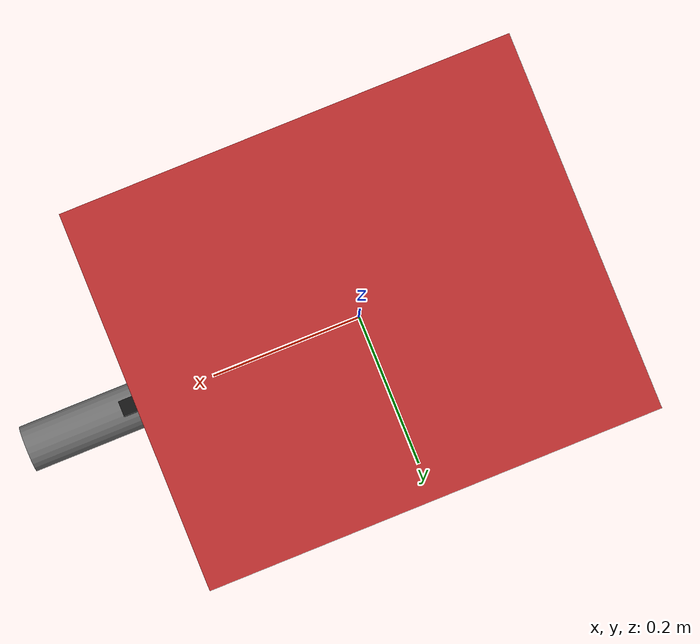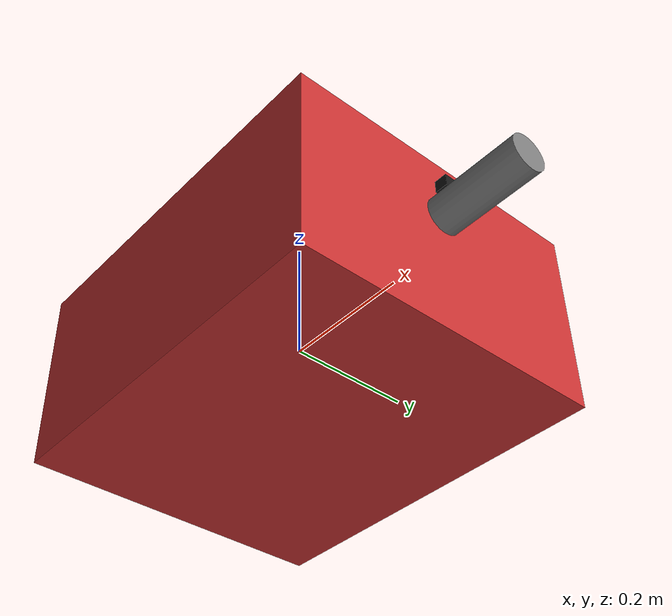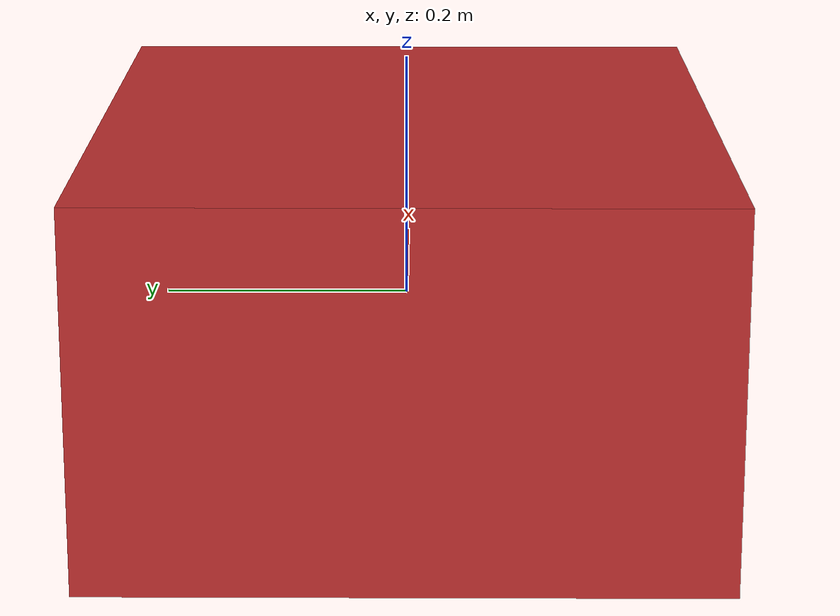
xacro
<?xml version="1.0"?>
<robot xmlns:xacro="http://www.ros.org/wiki/xacro" name="firefighter_robot">

  <link name="base_link">
    <inertial>
      <mass value="20.0"/>
      <inertia ixx="0.1" ixy="0" ixz="0" iyy="0.1" iyz="0" izz="0.1"/>
    </inertial>
    <visual>
      <geometry>
        <box size="0.6 0.5 0.3"/>
      </geometry>
      <material name="ff_body">
        <color rgba="0.8 0.2 0.2 1.0"/>
      </material>
    </visual>
    <collision>
      <geometry>
        <box size="0.6 0.5 0.3"/>
      </geometry>
    </collision>
  </link>

  <!-- Forward-facing camera -->
  <link name="camera_link">
    <inertial>
      <mass value="0.1"/>
      <inertia ixx="0.001" ixy="0" ixz="0" iyy="0.001" iyz="0" izz="0.001"/>
    </inertial>
    <visual>
      <geometry>
        <box size="0.02 0.02 0.02"/>
      </geometry>
      <material name="camera_body">
        <color rgba="0.1 0.1 0.1 1.0"/>
      </material>
    </visual>
  </link>

  <joint name="camera_joint" type="fixed">
    <parent link="base_link"/>
    <child link="camera_link"/>
    <origin xyz="0.31 0 0.1" rpy="0 0 0"/>
  </joint>

  <!-- Water cannon nozzle -->
  <link name="nozzle_link">
    <inertial>
      <mass value="0.5"/>
      <inertia ixx="0.001" ixy="0" ixz="0" iyy="0.001" iyz="0" izz="0.001"/>
    </inertial>
    <visual>
      <geometry>
        <cylinder radius="0.03" length="0.2"/>
      </geometry>
      <material name="nozzle_body">
        <color rgba="0.5 0.5 0.5 1.0"/>
      </material>
    </visual>
  </link>

  <joint name="nozzle_joint" type="fixed">
    <parent link="base_link"/>
    <child link="nozzle_link"/>
    <origin xyz="0.35 0 0.05" rpy="0 1.5708 0"/>
  </joint>

</robot>
